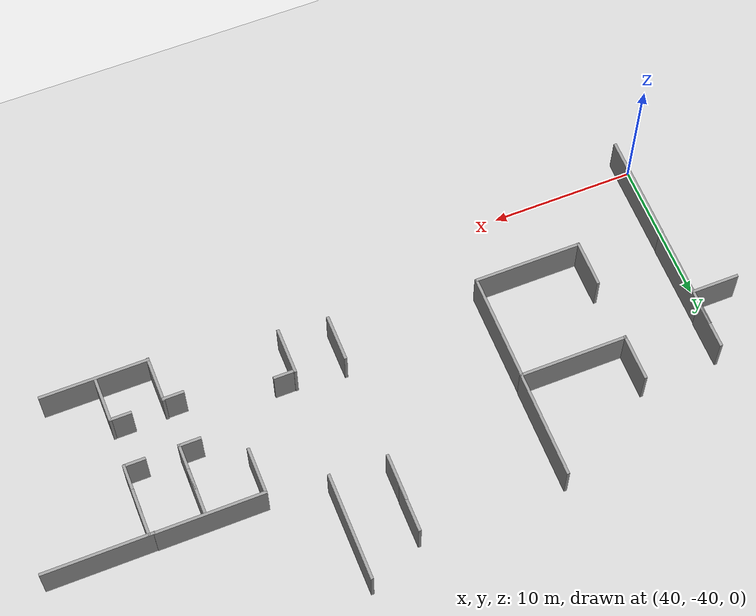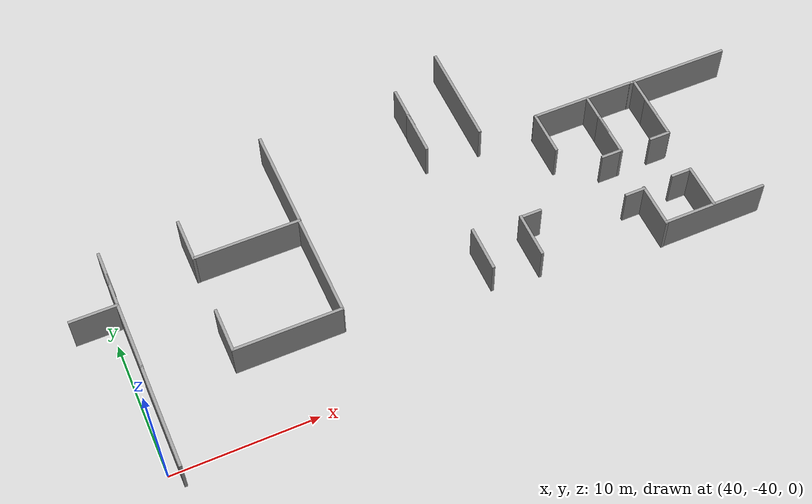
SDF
<sdf version="1.7">
 <world name="default">
  <model name="ground_plane">
   <static>1</static>
   <link name="link">
    <collision name="collision">
     <geometry><plane><normal>0 0 1</normal><size>100 100</size></plane></geometry>
     <surface>
      <contact><collide_bitmask>65535</collide_bitmask></contact>
      <friction><ode><mu>100</mu><mu2>50</mu2></ode></friction>
     </surface>
    </collision>
    <visual name="visual">
     <cast_shadows>0</cast_shadows>
     <geometry><plane><normal>0 0 1</normal><size>100 100</size></plane></geometry>
     <material>
      <script><uri>file://media/materials/scripts/gazebo.material</uri><name>Gazebo/Grey</name></script>
     </material>
    </visual>
   </link>
  </model>
  <model name="grey_wall_clone_2_clone_clone_clone_1_clone_clone_clone_clone_2_clone_4">
   <static>1</static>
   <link name="link">
    <pose>0 0 1.4 0 -0 0</pose>
    <collision name="collision"><geometry><box><size>7.5 0.2 2.8</size></box></geometry></collision>
    <visual name="visual">
     <cast_shadows>0</cast_shadows>
     <geometry><box><size>7.5 0.2 2.8</size></box></geometry>
     <material>
      <script>
       <uri>model://grey_wall/materials/scripts</uri>
       <uri>model://grey_wall/materials/textures</uri>
       <name>vrc/grey_wall</name>
      </script>
     </material>
    </visual>
   </link>
   <pose>40.8031 -37.3472 0 0 0 -1.5708</pose>
  </model>
  <model name="grey_wall_clone_2_clone_clone_clone_1_clone_clone_clone_clone_2_clone_5">
   <static>1</static>
   <link name="link">
    <pose>0 0 1.4 0 -0 0</pose>
    <collision name="collision"><geometry><box><size>7.5 0.2 2.8</size></box></geometry></collision>
    <visual name="visual">
     <cast_shadows>0</cast_shadows>
     <geometry><box><size>7.5 0.2 2.8</size></box></geometry>
     <material>
      <script>
       <uri>model://grey_wall/materials/scripts</uri>
       <uri>model://grey_wall/materials/textures</uri>
       <name>vrc/grey_wall</name>
      </script>
     </material>
    </visual>
   </link>
   <pose>40.8202 -29.9795 0 0 0 -1.5708</pose>
  </model>
  <model name="fixed_half_clone_14">
   <link name="link">
    <pose>0 0 1.4 0 -0 0</pose>
    <inertial>
     <mass>1</mass>
     <inertia><ixx>1</ixx><ixy>0</ixy><ixz>0</ixz><iyy>1</iyy><iyz>0</iyz><izz>1</izz></inertia>
    </inertial>
    <visual name="visual">
     <cast_shadows>0</cast_shadows>
     <geometry><box><size>3.3 0.2 2.8</size></box></geometry>
     <material>
      <script>
       <uri>model://grey_wall/materials/scripts</uri>
       <uri>model://grey_wall/materials/textures</uri>
       <name>vrc/grey_wall</name>
      </script>
      <shader type="pixel"><normal_map>__default__</normal_map></shader>
      <ambient>1 1 1 1</ambient>
      <diffuse>1 1 1 1</diffuse>
      <specular>0 0 0 1</specular>
      <emissive>0 0 0 1</emissive>
     </material>
    </visual>
    <collision name="collision">
     <geometry><box><size>3.3 0.2 2.8</size></box></geometry>
     <surface>
      <friction>
       <ode><mu>1</mu><mu2>1</mu2><fdir1>0 0 0</fdir1><slip1>0</slip1><slip2>0</slip2></ode>
       <torsional>
        <coefficient>1</coefficient>
        <patch_radius>0</patch_radius>
        <surface_radius>0</surface_radius>
        <use_patch_radius>1</use_patch_radius>
        <ode><slip>0</slip></ode>
       </torsional>
      </friction>
      <bounce><restitution_coefficient>0</restitution_coefficient><threshold>1e+06</threshold></bounce>
      <contact>
       <collide_without_contact>0</collide_without_contact>
       <collide_without_contact_bitmask>1</collide_without_contact_bitmask>
       <collide_bitmask>1</collide_bitmask>
       <ode>
        <soft_cfm>0</soft_cfm>
        <soft_erp>0.2</soft_erp>
        <kp>1e+13</kp>
        <kd>1</kd>
        <max_vel>0.01</max_vel>
        <min_depth>0</min_depth>
       </ode>
       <bullet>
        <split_impulse>1</split_impulse>
        <split_impulse_penetration_threshold>-0.01</split_impulse_penetration_threshold>
        <soft_cfm>0</soft_cfm>
        <soft_erp>0.2</soft_erp>
        <kp>1e+13</kp>
        <kd>1</kd>
       </bullet>
      </contact>
     </surface>
    </collision>
   </link>
   <static>1</static>
   <pose>40.8587 -26.1299 0 0 0 -1.5708</pose>
  </model>
  <model name="fixed_half_clone_17_clone_4">
   <link name="link">
    <pose>0 0 1.4 0 -0 0</pose>
    <inertial>
     <mass>1</mass>
     <inertia><ixx>1</ixx><ixy>0</ixy><ixz>0</ixz><iyy>1</iyy><iyz>0</iyz><izz>1</izz></inertia>
    </inertial>
    <visual name="visual">
     <cast_shadows>0</cast_shadows>
     <geometry><box><size>3.3 0.2 2.8</size></box></geometry>
     <material>
      <script>
       <uri>model://grey_wall/materials/scripts</uri>
       <uri>model://grey_wall/materials/textures</uri>
       <name>vrc/grey_wall</name>
      </script>
      <shader type="pixel"><normal_map>__default__</normal_map></shader>
      <ambient>1 1 1 1</ambient>
      <diffuse>1 1 1 1</diffuse>
      <specular>0 0 0 1</specular>
      <emissive>0 0 0 1</emissive>
     </material>
    </visual>
    <collision name="collision">
     <geometry><box><size>3.3 0.2 2.8</size></box></geometry>
     <surface>
      <friction>
       <ode><mu>1</mu><mu2>1</mu2><fdir1>0 0 0</fdir1><slip1>0</slip1><slip2>0</slip2></ode>
       <torsional>
        <coefficient>1</coefficient>
        <patch_radius>0</patch_radius>
        <surface_radius>0</surface_radius>
        <use_patch_radius>1</use_patch_radius>
        <ode><slip>0</slip></ode>
       </torsional>
      </friction>
      <bounce><restitution_coefficient>0</restitution_coefficient><threshold>1e+06</threshold></bounce>
      <contact>
       <collide_without_contact>0</collide_without_contact>
       <collide_without_contact_bitmask>1</collide_without_contact_bitmask>
       <collide_bitmask>1</collide_bitmask>
       <ode>
        <soft_cfm>0</soft_cfm>
        <soft_erp>0.2</soft_erp>
        <kp>1e+13</kp>
        <kd>1</kd>
        <max_vel>0.01</max_vel>
        <min_depth>0</min_depth>
       </ode>
       <bullet>
        <split_impulse>1</split_impulse>
        <split_impulse_penetration_threshold>-0.01</split_impulse_penetration_threshold>
        <soft_cfm>0</soft_cfm>
        <soft_erp>0.2</soft_erp>
        <kp>1e+13</kp>
        <kd>1</kd>
       </bullet>
      </contact>
     </surface>
    </collision>
   </link>
   <static>1</static>
   <pose>39.2128 -28.7659 0 0 -0 3.14159</pose>
  </model>
  <model name="grey_wall_clone_2_clone_clone_clone_1_clone_clone_0_clone_1_clone_clone_clone">
   <static>1</static>
   <link name="link">
    <pose>0 0 1.4 0 -0 0</pose>
    <collision name="collision"><geometry><box><size>7.5 0.2 2.8</size></box></geometry></collision>
    <visual name="visual">
     <cast_shadows>0</cast_shadows>
     <geometry><box><size>7.5 0.2 2.8</size></box></geometry>
     <material>
      <script>
       <uri>model://grey_wall/materials/scripts</uri>
       <uri>model://grey_wall/materials/textures</uri>
       <name>vrc/grey_wall</name>
      </script>
     </material>
    </visual>
   </link>
   <pose>53.7567 -23.6775 0 0 0 -1.5708</pose>
  </model>
  <model name="grey_wall_clone_1_clone_2_clone_clone_clone_clone_clone_clone_clone_clone_clone">
   <static>1</static>
   <link name="link">
    <pose>0 0 1.4 0 -0 0</pose>
    <collision name="collision"><geometry><box><size>7.5 0.2 2.8</size></box></geometry></collision>
    <visual name="visual">
     <cast_shadows>0</cast_shadows>
     <geometry><box><size>7.5 0.2 2.8</size></box></geometry>
     <material>
      <script>
       <uri>model://grey_wall/materials/scripts</uri>
       <uri>model://grey_wall/materials/textures</uri>
       <name>vrc/grey_wall</name>
      </script>
     </material>
    </visual>
   </link>
   <pose>50.0705 -27.3647 0 0 -0 0</pose>
  </model>
  <model name="fixed_half_clone_16_clone_clone_clone">
   <link name="link">
    <pose>0 0 1.4 0 -0 0</pose>
    <inertial>
     <mass>1</mass>
     <inertia><ixx>1</ixx><ixy>0</ixy><ixz>0</ixz><iyy>1</iyy><iyz>0</iyz><izz>1</izz></inertia>
    </inertial>
    <visual name="visual">
     <cast_shadows>0</cast_shadows>
     <geometry><box><size>3.3 0.2 2.8</size></box></geometry>
     <material>
      <script>
       <uri>model://grey_wall/materials/scripts</uri>
       <uri>model://grey_wall/materials/textures</uri>
       <name>vrc/grey_wall</name>
      </script>
      <shader type="pixel"><normal_map>__default__</normal_map></shader>
      <ambient>1 1 1 1</ambient>
      <diffuse>1 1 1 1</diffuse>
      <specular>0 0 0 1</specular>
      <emissive>0 0 0 1</emissive>
     </material>
    </visual>
    <collision name="collision">
     <geometry><box><size>3.3 0.2 2.8</size></box></geometry>
     <surface>
      <friction>
       <ode><mu>1</mu><mu2>1</mu2><fdir1>0 0 0</fdir1><slip1>0</slip1><slip2>0</slip2></ode>
       <torsional>
        <coefficient>1</coefficient>
        <patch_radius>0</patch_radius>
        <surface_radius>0</surface_radius>
        <use_patch_radius>1</use_patch_radius>
        <ode><slip>0</slip></ode>
       </torsional>
      </friction>
      <bounce><restitution_coefficient>0</restitution_coefficient><threshold>1e+06</threshold></bounce>
      <contact>
       <collide_without_contact>0</collide_without_contact>
       <collide_without_contact_bitmask>1</collide_without_contact_bitmask>
       <collide_bitmask>1</collide_bitmask>
       <ode>
        <soft_cfm>0</soft_cfm>
        <soft_erp>0.2</soft_erp>
        <kp>1e+13</kp>
        <kd>1</kd>
        <max_vel>0.01</max_vel>
        <min_depth>0</min_depth>
       </ode>
       <bullet>
        <split_impulse>1</split_impulse>
        <split_impulse_penetration_threshold>-0.01</split_impulse_penetration_threshold>
        <soft_cfm>0</soft_cfm>
        <soft_erp>0.2</soft_erp>
        <kp>1e+13</kp>
        <kd>1</kd>
       </bullet>
      </contact>
     </surface>
    </collision>
   </link>
   <static>1</static>
   <pose>46.3962 -25.8257 0 0 0 -1.5708</pose>
  </model>
  <model name="grey_wall_clone_2_clone_clone_clone_1_clone_clone_0_clone_1_clone_clone_clone_clone">
   <static>1</static>
   <link name="link">
    <pose>0 0 1.4 0 -0 0</pose>
    <collision name="collision"><geometry><box><size>7.5 0.2 2.8</size></box></geometry></collision>
    <visual name="visual">
     <cast_shadows>0</cast_shadows>
     <geometry><box><size>7.5 0.2 2.8</size></box></geometry>
     <material>
      <script>
       <uri>model://grey_wall/materials/scripts</uri>
       <uri>model://grey_wall/materials/textures</uri>
       <name>vrc/grey_wall</name>
      </script>
     </material>
    </visual>
   </link>
   <pose>53.7317 -31.1721 0 0 0 -1.5708</pose>
  </model>
  <model name="grey_wall_clone_1_clone_2_clone_clone_clone_clone_clone_clone_clone_clone_clone_clone">
   <static>1</static>
   <link name="link">
    <pose>0 0 1.4 0 -0 0</pose>
    <collision name="collision"><geometry><box><size>7.5 0.2 2.8</size></box></geometry></collision>
    <visual name="visual">
     <cast_shadows>0</cast_shadows>
     <geometry><box><size>7.5 0.2 2.8</size></box></geometry>
     <material>
      <script>
       <uri>model://grey_wall/materials/scripts</uri>
       <uri>model://grey_wall/materials/textures</uri>
       <name>vrc/grey_wall</name>
      </script>
     </material>
    </visual>
   </link>
   <pose>50.0144 -34.8338 0 0 -0 0</pose>
  </model>
  <model name="fixed_half_clone_16_clone_clone_clone_clone">
   <link name="link">
    <pose>0 0 1.4 0 -0 0</pose>
    <inertial>
     <mass>1</mass>
     <inertia><ixx>1</ixx><ixy>0</ixy><ixz>0</ixz><iyy>1</iyy><iyz>0</iyz><izz>1</izz></inertia>
    </inertial>
    <visual name="visual">
     <cast_shadows>0</cast_shadows>
     <geometry><box><size>3.3 0.2 2.8</size></box></geometry>
     <material>
      <script>
       <uri>model://grey_wall/materials/scripts</uri>
       <uri>model://grey_wall/materials/textures</uri>
       <name>vrc/grey_wall</name>
      </script>
      <shader type="pixel"><normal_map>__default__</normal_map></shader>
      <ambient>1 1 1 1</ambient>
      <diffuse>1 1 1 1</diffuse>
      <specular>0 0 0 1</specular>
      <emissive>0 0 0 1</emissive>
     </material>
    </visual>
    <collision name="collision">
     <geometry><box><size>3.3 0.2 2.8</size></box></geometry>
     <surface>
      <friction>
       <ode><mu>1</mu><mu2>1</mu2><fdir1>0 0 0</fdir1><slip1>0</slip1><slip2>0</slip2></ode>
       <torsional>
        <coefficient>1</coefficient>
        <patch_radius>0</patch_radius>
        <surface_radius>0</surface_radius>
        <use_patch_radius>1</use_patch_radius>
        <ode><slip>0</slip></ode>
       </torsional>
      </friction>
      <bounce><restitution_coefficient>0</restitution_coefficient><threshold>1e+06</threshold></bounce>
      <contact>
       <collide_without_contact>0</collide_without_contact>
       <collide_without_contact_bitmask>1</collide_without_contact_bitmask>
       <collide_bitmask>1</collide_bitmask>
       <ode>
        <soft_cfm>0</soft_cfm>
        <soft_erp>0.2</soft_erp>
        <kp>1e+13</kp>
        <kd>1</kd>
        <max_vel>0.01</max_vel>
        <min_depth>0</min_depth>
       </ode>
       <bullet>
        <split_impulse>1</split_impulse>
        <split_impulse_penetration_threshold>-0.01</split_impulse_penetration_threshold>
        <soft_cfm>0</soft_cfm>
        <soft_erp>0.2</soft_erp>
        <kp>1e+13</kp>
        <kd>1</kd>
       </bullet>
      </contact>
     </surface>
    </collision>
   </link>
   <static>1</static>
   <pose>46.3629 -33.2767 0 0 0 -1.5708</pose>
  </model>
  <model name="grey_wall_clone_2_clone_clone_clone_1_clone_clone_0_clone_1_clone_clone_clone_1_clone">
   <static>1</static>
   <link name="link">
    <pose>0 0 1.4 0 -0 0</pose>
    <collision name="collision"><geometry><box><size>7.5 0.2 2.8</size></box></geometry></collision>
    <visual name="visual">
     <cast_shadows>0</cast_shadows>
     <geometry><box><size>7.5 0.2 2.8</size></box></geometry>
     <material>
      <script>
       <uri>model://grey_wall/materials/scripts</uri>
       <uri>model://grey_wall/materials/textures</uri>
       <name>vrc/grey_wall</name>
      </script>
     </material>
    </visual>
   </link>
   <pose>67.7602 -21.7644 0 0 0 -1.5708</pose>
  </model>
  <model name="fixed_half_clone_16_clone_clone_clone_0">
   <link name="link">
    <pose>0 0 1.4 0 -0 0</pose>
    <inertial>
     <mass>1</mass>
     <inertia><ixx>1</ixx><ixy>0</ixy><ixz>0</ixz><iyy>1</iyy><iyz>0</iyz><izz>1</izz></inertia>
    </inertial>
    <visual name="visual">
     <cast_shadows>0</cast_shadows>
     <geometry><box><size>3.3 0.2 2.8</size></box></geometry>
     <material>
      <script>
       <uri>model://grey_wall/materials/scripts</uri>
       <uri>model://grey_wall/materials/textures</uri>
       <name>vrc/grey_wall</name>
      </script>
      <shader type="pixel"><normal_map>__default__</normal_map></shader>
      <ambient>1 1 1 1</ambient>
      <diffuse>1 1 1 1</diffuse>
      <specular>0 0 0 1</specular>
      <emissive>0 0 0 1</emissive>
     </material>
    </visual>
    <collision name="collision">
     <geometry><box><size>3.3 0.2 2.8</size></box></geometry>
     <surface>
      <friction>
       <ode><mu>1</mu><mu2>1</mu2><fdir1>0 0 0</fdir1><slip1>0</slip1><slip2>0</slip2></ode>
       <torsional>
        <coefficient>1</coefficient>
        <patch_radius>0</patch_radius>
        <surface_radius>0</surface_radius>
        <use_patch_radius>1</use_patch_radius>
        <ode><slip>0</slip></ode>
       </torsional>
      </friction>
      <bounce><restitution_coefficient>0</restitution_coefficient><threshold>1e+06</threshold></bounce>
      <contact>
       <collide_without_contact>0</collide_without_contact>
       <collide_without_contact_bitmask>1</collide_without_contact_bitmask>
       <collide_bitmask>1</collide_bitmask>
       <ode>
        <soft_cfm>0</soft_cfm>
        <soft_erp>0.2</soft_erp>
        <kp>1e+13</kp>
        <kd>1</kd>
        <max_vel>0.01</max_vel>
        <min_depth>0</min_depth>
       </ode>
       <bullet>
        <split_impulse>1</split_impulse>
        <split_impulse_penetration_threshold>-0.01</split_impulse_penetration_threshold>
        <soft_cfm>0</soft_cfm>
        <soft_erp>0.2</soft_erp>
        <kp>1e+13</kp>
        <kd>1</kd>
       </bullet>
      </contact>
     </surface>
    </collision>
   </link>
   <static>1</static>
   <pose>63.8569 -21.503 0 0 0 -1.5708</pose>
  </model>
  <model name="fixed_half_clone_16_clone_clone_clone_1">
   <link name="link">
    <pose>0 0 1.4 0 -0 0</pose>
    <inertial>
     <mass>1</mass>
     <inertia><ixx>1</ixx><ixy>0</ixy><ixz>0</ixz><iyy>1</iyy><iyz>0</iyz><izz>1</izz></inertia>
    </inertial>
    <visual name="visual">
     <cast_shadows>0</cast_shadows>
     <geometry><box><size>3.3 0.2 2.8</size></box></geometry>
     <material>
      <script>
       <uri>model://grey_wall/materials/scripts</uri>
       <uri>model://grey_wall/materials/textures</uri>
       <name>vrc/grey_wall</name>
      </script>
      <shader type="pixel"><normal_map>__default__</normal_map></shader>
      <ambient>1 1 1 1</ambient>
      <diffuse>1 1 1 1</diffuse>
      <specular>0 0 0 1</specular>
      <emissive>0 0 0 1</emissive>
     </material>
    </visual>
    <collision name="collision">
     <geometry><box><size>3.3 0.2 2.8</size></box></geometry>
     <surface>
      <friction>
       <ode><mu>1</mu><mu2>1</mu2><fdir1>0 0 0</fdir1><slip1>0</slip1><slip2>0</slip2></ode>
       <torsional>
        <coefficient>1</coefficient>
        <patch_radius>0</patch_radius>
        <surface_radius>0</surface_radius>
        <use_patch_radius>1</use_patch_radius>
        <ode><slip>0</slip></ode>
       </torsional>
      </friction>
      <bounce><restitution_coefficient>0</restitution_coefficient><threshold>1e+06</threshold></bounce>
      <contact>
       <collide_without_contact>0</collide_without_contact>
       <collide_without_contact_bitmask>1</collide_without_contact_bitmask>
       <collide_bitmask>1</collide_bitmask>
       <ode>
        <soft_cfm>0</soft_cfm>
        <soft_erp>0.2</soft_erp>
        <kp>1e+13</kp>
        <kd>1</kd>
        <max_vel>0.01</max_vel>
        <min_depth>0</min_depth>
       </ode>
       <bullet>
        <split_impulse>1</split_impulse>
        <split_impulse_penetration_threshold>-0.01</split_impulse_penetration_threshold>
        <soft_cfm>0</soft_cfm>
        <soft_erp>0.2</soft_erp>
        <kp>1e+13</kp>
        <kd>1</kd>
       </bullet>
      </contact>
     </surface>
    </collision>
   </link>
   <static>1</static>
   <pose>63.8366 -23.7503 0 0 0 -1.5708</pose>
  </model>
  <model name="fixed_half_clone_16_clone_clone_clone_0_clone_0">
   <link name="link">
    <pose>0 0 1.4 0 -0 0</pose>
    <inertial>
     <mass>1</mass>
     <inertia><ixx>1</ixx><ixy>0</ixy><ixz>0</ixz><iyy>1</iyy><iyz>0</iyz><izz>1</izz></inertia>
    </inertial>
    <visual name="visual">
     <cast_shadows>0</cast_shadows>
     <geometry><box><size>3.3 0.2 2.8</size></box></geometry>
     <material>
      <script>
       <uri>model://grey_wall/materials/scripts</uri>
       <uri>model://grey_wall/materials/textures</uri>
       <name>vrc/grey_wall</name>
      </script>
      <shader type="pixel"><normal_map>__default__</normal_map></shader>
      <ambient>1 1 1 1</ambient>
      <diffuse>1 1 1 1</diffuse>
      <specular>0 0 0 1</specular>
      <emissive>0 0 0 1</emissive>
     </material>
    </visual>
    <collision name="collision">
     <geometry><box><size>3.3 0.2 2.8</size></box></geometry>
     <surface>
      <friction>
       <ode><mu>1</mu><mu2>1</mu2><fdir1>0 0 0</fdir1><slip1>0</slip1><slip2>0</slip2></ode>
       <torsional>
        <coefficient>1</coefficient>
        <patch_radius>0</patch_radius>
        <surface_radius>0</surface_radius>
        <use_patch_radius>1</use_patch_radius>
        <ode><slip>0</slip></ode>
       </torsional>
      </friction>
      <bounce><restitution_coefficient>0</restitution_coefficient><threshold>1e+06</threshold></bounce>
      <contact>
       <collide_without_contact>0</collide_without_contact>
       <collide_without_contact_bitmask>1</collide_without_contact_bitmask>
       <collide_bitmask>1</collide_bitmask>
       <ode>
        <soft_cfm>0</soft_cfm>
        <soft_erp>0.2</soft_erp>
        <kp>1e+13</kp>
        <kd>1</kd>
        <max_vel>0.01</max_vel>
        <min_depth>0</min_depth>
       </ode>
       <bullet>
        <split_impulse>1</split_impulse>
        <split_impulse_penetration_threshold>-0.01</split_impulse_penetration_threshold>
        <soft_cfm>0</soft_cfm>
        <soft_erp>0.2</soft_erp>
        <kp>1e+13</kp>
        <kd>1</kd>
       </bullet>
      </contact>
     </surface>
    </collision>
   </link>
   <static>1</static>
   <pose>67.1893 -34.6146 0 0 0 -1.5708</pose>
  </model>
  <model name="fixed_half_clone_16_clone_clone_clone_0_clone_2">
   <link name="link">
    <pose>0 0 1.4 0 -0 0</pose>
    <inertial>
     <mass>1</mass>
     <inertia><ixx>1</ixx><ixy>0</ixy><ixz>0</ixz><iyy>1</iyy><iyz>0</iyz><izz>1</izz></inertia>
    </inertial>
    <visual name="visual">
     <cast_shadows>0</cast_shadows>
     <geometry><box><size>3.3 0.2 2.8</size></box></geometry>
     <material>
      <script>
       <uri>model://grey_wall/materials/scripts</uri>
       <uri>model://grey_wall/materials/textures</uri>
       <name>vrc/grey_wall</name>
      </script>
      <shader type="pixel"><normal_map>__default__</normal_map></shader>
      <ambient>1 1 1 1</ambient>
      <diffuse>1 1 1 1</diffuse>
      <specular>0 0 0 1</specular>
      <emissive>0 0 0 1</emissive>
     </material>
    </visual>
    <collision name="collision">
     <geometry><box><size>3.3 0.2 2.8</size></box></geometry>
     <surface>
      <friction>
       <ode><mu>1</mu><mu2>1</mu2><fdir1>0 0 0</fdir1><slip1>0</slip1><slip2>0</slip2></ode>
       <torsional>
        <coefficient>1</coefficient>
        <patch_radius>0</patch_radius>
        <surface_radius>0</surface_radius>
        <use_patch_radius>1</use_patch_radius>
        <ode><slip>0</slip></ode>
       </torsional>
      </friction>
      <bounce><restitution_coefficient>0</restitution_coefficient><threshold>1e+06</threshold></bounce>
      <contact>
       <collide_without_contact>0</collide_without_contact>
       <collide_without_contact_bitmask>1</collide_without_contact_bitmask>
       <collide_bitmask>1</collide_bitmask>
       <ode>
        <soft_cfm>0</soft_cfm>
        <soft_erp>0.2</soft_erp>
        <kp>1e+13</kp>
        <kd>1</kd>
        <max_vel>0.01</max_vel>
        <min_depth>0</min_depth>
       </ode>
       <bullet>
        <split_impulse>1</split_impulse>
        <split_impulse_penetration_threshold>-0.01</split_impulse_penetration_threshold>
        <soft_cfm>0</soft_cfm>
        <soft_erp>0.2</soft_erp>
        <kp>1e+13</kp>
        <kd>1</kd>
       </bullet>
      </contact>
     </surface>
    </collision>
   </link>
   <static>1</static>
   <pose>63.832 -34.2979 0 0 0 -1.5708</pose>
  </model>
  <model name="grey_wall_clone_1_clone_2_clone_clone_clone_clone_clone_clone_clone_clone_clone_3_clone_0_clone_1_clone">
   <static>1</static>
   <link name="link">
    <pose>0 0 1.4 0 -0 0</pose>
    <collision name="collision"><geometry><box><size>7.5 0.2 2.8</size></box></geometry></collision>
    <visual name="visual">
     <cast_shadows>0</cast_shadows>
     <geometry><box><size>7.5 0.2 2.8</size></box></geometry>
     <material>
      <script>
       <uri>model://grey_wall/materials/scripts</uri>
       <uri>model://grey_wall/materials/textures</uri>
       <name>vrc/grey_wall</name>
      </script>
     </material>
    </visual>
   </link>
   <pose>75.4948 -25.8359 0 0 -0 0</pose>
  </model>
  <model name="grey_wall_clone_1_clone_2_clone_clone_clone_clone_clone_clone_clone_clone_clone_3_clone_0_clone_1_clone_0">
   <static>1</static>
   <link name="link">
    <pose>0 0 1.4 0 -0 0</pose>
    <collision name="collision"><geometry><box><size>7.5 0.2 2.8</size></box></geometry></collision>
    <visual name="visual">
     <cast_shadows>0</cast_shadows>
     <geometry><box><size>7.5 0.2 2.8</size></box></geometry>
     <material>
      <script>
       <uri>model://grey_wall/materials/scripts</uri>
       <uri>model://grey_wall/materials/textures</uri>
       <name>vrc/grey_wall</name>
      </script>
     </material>
    </visual>
   </link>
   <pose>82.8983 -25.8597 0 0 -0 0</pose>
  </model>
  <model name="fixed_half_clone_16_clone_clone_clone_1_clone">
   <link name="link">
    <pose>0 0 1.4 0 -0 0</pose>
    <inertial>
     <mass>1</mass>
     <inertia><ixx>1</ixx><ixy>0</ixy><ixz>0</ixz><iyy>1</iyy><iyz>0</iyz><izz>1</izz></inertia>
    </inertial>
    <visual name="visual">
     <cast_shadows>0</cast_shadows>
     <geometry><box><size>3.3 0.2 2.8</size></box></geometry>
     <material>
      <script>
       <uri>model://grey_wall/materials/scripts</uri>
       <uri>model://grey_wall/materials/textures</uri>
       <name>vrc/grey_wall</name>
      </script>
      <shader type="pixel"><normal_map>__default__</normal_map></shader>
      <ambient>1 1 1 1</ambient>
      <diffuse>1 1 1 1</diffuse>
      <specular>0 0 0 1</specular>
      <emissive>0 0 0 1</emissive>
     </material>
    </visual>
    <collision name="collision">
     <geometry><box><size>3.3 0.2 2.8</size></box></geometry>
     <surface>
      <friction>
       <ode><mu>1</mu><mu2>1</mu2><fdir1>0 0 0</fdir1><slip1>0</slip1><slip2>0</slip2></ode>
       <torsional>
        <coefficient>1</coefficient>
        <patch_radius>0</patch_radius>
        <surface_radius>0</surface_radius>
        <use_patch_radius>1</use_patch_radius>
        <ode><slip>0</slip></ode>
       </torsional>
      </friction>
      <bounce><restitution_coefficient>0</restitution_coefficient><threshold>1e+06</threshold></bounce>
      <contact>
       <collide_without_contact>0</collide_without_contact>
       <collide_without_contact_bitmask>1</collide_without_contact_bitmask>
       <collide_bitmask>1</collide_bitmask>
       <ode>
        <soft_cfm>0</soft_cfm>
        <soft_erp>0.2</soft_erp>
        <kp>1e+13</kp>
        <kd>1</kd>
        <max_vel>0.01</max_vel>
        <min_depth>0</min_depth>
       </ode>
       <bullet>
        <split_impulse>1</split_impulse>
        <split_impulse_penetration_threshold>-0.01</split_impulse_penetration_threshold>
        <soft_cfm>0</soft_cfm>
        <soft_erp>0.2</soft_erp>
        <kp>1e+13</kp>
        <kd>1</kd>
       </bullet>
      </contact>
     </surface>
    </collision>
   </link>
   <static>1</static>
   <pose>71.84 -27.4337 0 0 0 -1.5708</pose>
  </model>
  <model name="fixed_half_clone_16_clone_clone_clone_1_clone_0">
   <link name="link">
    <pose>0 0 1.4 0 -0 0</pose>
    <inertial>
     <mass>1</mass>
     <inertia><ixx>1</ixx><ixy>0</ixy><ixz>0</ixz><iyy>1</iyy><iyz>0</iyz><izz>1</izz></inertia>
    </inertial>
    <visual name="visual">
     <cast_shadows>0</cast_shadows>
     <geometry><box><size>3.3 0.2 2.8</size></box></geometry>
     <material>
      <script>
       <uri>model://grey_wall/materials/scripts</uri>
       <uri>model://grey_wall/materials/textures</uri>
       <name>vrc/grey_wall</name>
      </script>
      <shader type="pixel"><normal_map>__default__</normal_map></shader>
      <ambient>1 1 1 1</ambient>
      <diffuse>1 1 1 1</diffuse>
      <specular>0 0 0 1</specular>
      <emissive>0 0 0 1</emissive>
     </material>
    </visual>
    <collision name="collision">
     <geometry><box><size>3.3 0.2 2.8</size></box></geometry>
     <surface>
      <friction>
       <ode><mu>1</mu><mu2>1</mu2><fdir1>0 0 0</fdir1><slip1>0</slip1><slip2>0</slip2></ode>
       <torsional>
        <coefficient>1</coefficient>
        <patch_radius>0</patch_radius>
        <surface_radius>0</surface_radius>
        <use_patch_radius>1</use_patch_radius>
        <ode><slip>0</slip></ode>
       </torsional>
      </friction>
      <bounce><restitution_coefficient>0</restitution_coefficient><threshold>1e+06</threshold></bounce>
      <contact>
       <collide_without_contact>0</collide_without_contact>
       <collide_without_contact_bitmask>1</collide_without_contact_bitmask>
       <collide_bitmask>1</collide_bitmask>
       <ode>
        <soft_cfm>0</soft_cfm>
        <soft_erp>0.2</soft_erp>
        <kp>1e+13</kp>
        <kd>1</kd>
        <max_vel>0.01</max_vel>
        <min_depth>0</min_depth>
       </ode>
       <bullet>
        <split_impulse>1</split_impulse>
        <split_impulse_penetration_threshold>-0.01</split_impulse_penetration_threshold>
        <soft_cfm>0</soft_cfm>
        <soft_erp>0.2</soft_erp>
        <kp>1e+13</kp>
        <kd>1</kd>
       </bullet>
      </contact>
     </surface>
    </collision>
   </link>
   <static>1</static>
   <pose>75.8338 -27.4844 0 0 0 -1.5708</pose>
  </model>
  <model name="fixed_half_clone_16_clone_clone_clone_1_clone_1">
   <link name="link">
    <pose>0 0 1.4 0 -0 0</pose>
    <inertial>
     <mass>1</mass>
     <inertia><ixx>1</ixx><ixy>0</ixy><ixz>0</ixz><iyy>1</iyy><iyz>0</iyz><izz>1</izz></inertia>
    </inertial>
    <visual name="visual">
     <cast_shadows>0</cast_shadows>
     <geometry><box><size>3.3 0.2 2.8</size></box></geometry>
     <material>
      <script>
       <uri>model://grey_wall/materials/scripts</uri>
       <uri>model://grey_wall/materials/textures</uri>
       <name>vrc/grey_wall</name>
      </script>
      <shader type="pixel"><normal_map>__default__</normal_map></shader>
      <ambient>1 1 1 1</ambient>
      <diffuse>1 1 1 1</diffuse>
      <specular>0 0 0 1</specular>
      <emissive>0 0 0 1</emissive>
     </material>
    </visual>
    <collision name="collision">
     <geometry><box><size>3.3 0.2 2.8</size></box></geometry>
     <surface>
      <friction>
       <ode><mu>1</mu><mu2>1</mu2><fdir1>0 0 0</fdir1><slip1>0</slip1><slip2>0</slip2></ode>
       <torsional>
        <coefficient>1</coefficient>
        <patch_radius>0</patch_radius>
        <surface_radius>0</surface_radius>
        <use_patch_radius>1</use_patch_radius>
        <ode><slip>0</slip></ode>
       </torsional>
      </friction>
      <bounce><restitution_coefficient>0</restitution_coefficient><threshold>1e+06</threshold></bounce>
      <contact>
       <collide_without_contact>0</collide_without_contact>
       <collide_without_contact_bitmask>1</collide_without_contact_bitmask>
       <collide_bitmask>1</collide_bitmask>
       <ode>
        <soft_cfm>0</soft_cfm>
        <soft_erp>0.2</soft_erp>
        <kp>1e+13</kp>
        <kd>1</kd>
        <max_vel>0.01</max_vel>
        <min_depth>0</min_depth>
       </ode>
       <bullet>
        <split_impulse>1</split_impulse>
        <split_impulse_penetration_threshold>-0.01</split_impulse_penetration_threshold>
        <soft_cfm>0</soft_cfm>
        <soft_erp>0.2</soft_erp>
        <kp>1e+13</kp>
        <kd>1</kd>
       </bullet>
      </contact>
     </surface>
    </collision>
   </link>
   <static>1</static>
   <pose>75.8278 -29.308 0 0 0 -1.5708</pose>
  </model>
  <model name="fixed_half_clone_16_clone_clone_clone_1_clone_2">
   <link name="link">
    <pose>0 0 1.4 0 -0 0</pose>
    <inertial>
     <mass>1</mass>
     <inertia><ixx>1</ixx><ixy>0</ixy><ixz>0</ixz><iyy>1</iyy><iyz>0</iyz><izz>1</izz></inertia>
    </inertial>
    <visual name="visual">
     <cast_shadows>0</cast_shadows>
     <geometry><box><size>3.3 0.2 2.8</size></box></geometry>
     <material>
      <script>
       <uri>model://grey_wall/materials/scripts</uri>
       <uri>model://grey_wall/materials/textures</uri>
       <name>vrc/grey_wall</name>
      </script>
      <shader type="pixel"><normal_map>__default__</normal_map></shader>
      <ambient>1 1 1 1</ambient>
      <diffuse>1 1 1 1</diffuse>
      <specular>0 0 0 1</specular>
      <emissive>0 0 0 1</emissive>
     </material>
    </visual>
    <collision name="collision">
     <geometry><box><size>3.3 0.2 2.8</size></box></geometry>
     <surface>
      <friction>
       <ode><mu>1</mu><mu2>1</mu2><fdir1>0 0 0</fdir1><slip1>0</slip1><slip2>0</slip2></ode>
       <torsional>
        <coefficient>1</coefficient>
        <patch_radius>0</patch_radius>
        <surface_radius>0</surface_radius>
        <use_patch_radius>1</use_patch_radius>
        <ode><slip>0</slip></ode>
       </torsional>
      </friction>
      <bounce><restitution_coefficient>0</restitution_coefficient><threshold>1e+06</threshold></bounce>
      <contact>
       <collide_without_contact>0</collide_without_contact>
       <collide_without_contact_bitmask>1</collide_without_contact_bitmask>
       <collide_bitmask>1</collide_bitmask>
       <ode>
        <soft_cfm>0</soft_cfm>
        <soft_erp>0.2</soft_erp>
        <kp>1e+13</kp>
        <kd>1</kd>
        <max_vel>0.01</max_vel>
        <min_depth>0</min_depth>
       </ode>
       <bullet>
        <split_impulse>1</split_impulse>
        <split_impulse_penetration_threshold>-0.01</split_impulse_penetration_threshold>
        <soft_cfm>0</soft_cfm>
        <soft_erp>0.2</soft_erp>
        <kp>1e+13</kp>
        <kd>1</kd>
       </bullet>
      </contact>
     </surface>
    </collision>
   </link>
   <static>1</static>
   <pose>79.5324 -27.4684 0 0 0 -1.5708</pose>
  </model>
  <model name="fixed_half_clone_16_clone_clone_clone_1_clone_3">
   <link name="link">
    <pose>0 0 1.4 0 -0 0</pose>
    <inertial>
     <mass>1</mass>
     <inertia><ixx>1</ixx><ixy>0</ixy><ixz>0</ixz><iyy>1</iyy><iyz>0</iyz><izz>1</izz></inertia>
    </inertial>
    <visual name="visual">
     <cast_shadows>0</cast_shadows>
     <geometry><box><size>3.3 0.2 2.8</size></box></geometry>
     <material>
      <script>
       <uri>model://grey_wall/materials/scripts</uri>
       <uri>model://grey_wall/materials/textures</uri>
       <name>vrc/grey_wall</name>
      </script>
      <shader type="pixel"><normal_map>__default__</normal_map></shader>
      <ambient>1 1 1 1</ambient>
      <diffuse>1 1 1 1</diffuse>
      <specular>0 0 0 1</specular>
      <emissive>0 0 0 1</emissive>
     </material>
    </visual>
    <collision name="collision">
     <geometry><box><size>3.3 0.2 2.8</size></box></geometry>
     <surface>
      <friction>
       <ode><mu>1</mu><mu2>1</mu2><fdir1>0 0 0</fdir1><slip1>0</slip1><slip2>0</slip2></ode>
       <torsional>
        <coefficient>1</coefficient>
        <patch_radius>0</patch_radius>
        <surface_radius>0</surface_radius>
        <use_patch_radius>1</use_patch_radius>
        <ode><slip>0</slip></ode>
       </torsional>
      </friction>
      <bounce><restitution_coefficient>0</restitution_coefficient><threshold>1e+06</threshold></bounce>
      <contact>
       <collide_without_contact>0</collide_without_contact>
       <collide_without_contact_bitmask>1</collide_without_contact_bitmask>
       <collide_bitmask>1</collide_bitmask>
       <ode>
        <soft_cfm>0</soft_cfm>
        <soft_erp>0.2</soft_erp>
        <kp>1e+13</kp>
        <kd>1</kd>
        <max_vel>0.01</max_vel>
        <min_depth>0</min_depth>
       </ode>
       <bullet>
        <split_impulse>1</split_impulse>
        <split_impulse_penetration_threshold>-0.01</split_impulse_penetration_threshold>
        <soft_cfm>0</soft_cfm>
        <soft_erp>0.2</soft_erp>
        <kp>1e+13</kp>
        <kd>1</kd>
       </bullet>
      </contact>
     </surface>
    </collision>
   </link>
   <static>1</static>
   <pose>79.5207 -29.2581 0 0 0 -1.5708</pose>
  </model>
  <model name="half_wall_clone_0_clone_clone_clone_9_clone_1_clone">
   <link name="link">
    <pose>0 0 1.4 0 -0 0</pose>
    <inertial>
     <mass>1</mass>
     <inertia><ixx>1</ixx><ixy>0</ixy><ixz>0</ixz><iyy>1</iyy><iyz>0</iyz><izz>1</izz></inertia>
    </inertial>
    <visual name="visual">
     <cast_shadows>0</cast_shadows>
     <geometry><box><size>1.5 0.2 2.8</size></box></geometry>
     <material>
      <script>
       <uri>model://grey_wall/materials/scripts</uri>
       <uri>model://grey_wall/materials/textures</uri>
       <name>vrc/grey_wall</name>
      </script>
      <shader type="pixel"><normal_map>__default__</normal_map></shader>
      <ambient>1 1 1 1</ambient>
      <diffuse>1 1 1 1</diffuse>
      <specular>0 0 0 1</specular>
      <emissive>0 0 0 1</emissive>
     </material>
    </visual>
    <collision name="collision">
     <geometry><box><size>1.5 0.2 2.8</size></box></geometry>
     <surface>
      <friction>
       <ode><mu>1</mu><mu2>1</mu2><fdir1>0 0 0</fdir1><slip1>0</slip1><slip2>0</slip2></ode>
       <torsional>
        <coefficient>1</coefficient>
        <patch_radius>0</patch_radius>
        <surface_radius>0</surface_radius>
        <use_patch_radius>1</use_patch_radius>
        <ode><slip>0</slip></ode>
       </torsional>
      </friction>
      <bounce><restitution_coefficient>0</restitution_coefficient><threshold>1e+06</threshold></bounce>
      <contact>
       <collide_without_contact>0</collide_without_contact>
       <collide_without_contact_bitmask>1</collide_without_contact_bitmask>
       <collide_bitmask>1</collide_bitmask>
       <ode>
        <soft_cfm>0</soft_cfm>
        <soft_erp>0.2</soft_erp>
        <kp>1e+13</kp>
        <kd>1</kd>
        <max_vel>0.01</max_vel>
        <min_depth>0</min_depth>
       </ode>
       <bullet>
        <split_impulse>1</split_impulse>
        <split_impulse_penetration_threshold>-0.01</split_impulse_penetration_threshold>
        <soft_cfm>0</soft_cfm>
        <soft_erp>0.2</soft_erp>
        <kp>1e+13</kp>
        <kd>1</kd>
       </bullet>
      </contact>
     </surface>
    </collision>
   </link>
   <static>1</static>
   <pose>75.1045 -30.8574 0 0 -0 3.14159</pose>
  </model>
  <model name="half_wall_clone_0_clone_clone_clone_9_clone_1_clone_0">
   <link name="link">
    <pose>0 0 1.4 0 -0 0</pose>
    <inertial>
     <mass>1</mass>
     <inertia><ixx>1</ixx><ixy>0</ixy><ixz>0</ixz><iyy>1</iyy><iyz>0</iyz><izz>1</izz></inertia>
    </inertial>
    <visual name="visual">
     <cast_shadows>0</cast_shadows>
     <geometry><box><size>1.5 0.2 2.8</size></box></geometry>
     <material>
      <script>
       <uri>model://grey_wall/materials/scripts</uri>
       <uri>model://grey_wall/materials/textures</uri>
       <name>vrc/grey_wall</name>
      </script>
      <shader type="pixel"><normal_map>__default__</normal_map></shader>
      <ambient>1 1 1 1</ambient>
      <diffuse>1 1 1 1</diffuse>
      <specular>0 0 0 1</specular>
      <emissive>0 0 0 1</emissive>
     </material>
    </visual>
    <collision name="collision">
     <geometry><box><size>1.5 0.2 2.8</size></box></geometry>
     <surface>
      <friction>
       <ode><mu>1</mu><mu2>1</mu2><fdir1>0 0 0</fdir1><slip1>0</slip1><slip2>0</slip2></ode>
       <torsional>
        <coefficient>1</coefficient>
        <patch_radius>0</patch_radius>
        <surface_radius>0</surface_radius>
        <use_patch_radius>1</use_patch_radius>
        <ode><slip>0</slip></ode>
       </torsional>
      </friction>
      <bounce><restitution_coefficient>0</restitution_coefficient><threshold>1e+06</threshold></bounce>
      <contact>
       <collide_without_contact>0</collide_without_contact>
       <collide_without_contact_bitmask>1</collide_without_contact_bitmask>
       <collide_bitmask>1</collide_bitmask>
       <ode>
        <soft_cfm>0</soft_cfm>
        <soft_erp>0.2</soft_erp>
        <kp>1e+13</kp>
        <kd>1</kd>
        <max_vel>0.01</max_vel>
        <min_depth>0</min_depth>
       </ode>
       <bullet>
        <split_impulse>1</split_impulse>
        <split_impulse_penetration_threshold>-0.01</split_impulse_penetration_threshold>
        <soft_cfm>0</soft_cfm>
        <soft_erp>0.2</soft_erp>
        <kp>1e+13</kp>
        <kd>1</kd>
       </bullet>
      </contact>
     </surface>
    </collision>
   </link>
   <static>1</static>
   <pose>78.8228 -30.8291 0 0 -0 3.14159</pose>
  </model>
  <model name="fixed_half_clone_16_clone_clone_clone_1_clone_clone">
   <link name="link">
    <pose>0 0 1.4 0 -0 0</pose>
    <inertial>
     <mass>1</mass>
     <inertia><ixx>1</ixx><ixy>0</ixy><ixz>0</ixz><iyy>1</iyy><iyz>0</iyz><izz>1</izz></inertia>
    </inertial>
    <visual name="visual">
     <cast_shadows>0</cast_shadows>
     <geometry><box><size>3.3 0.2 2.8</size></box></geometry>
     <material>
      <script>
       <uri>model://grey_wall/materials/scripts</uri>
       <uri>model://grey_wall/materials/textures</uri>
       <name>vrc/grey_wall</name>
      </script>
      <shader type="pixel"><normal_map>__default__</normal_map></shader>
      <ambient>1 1 1 1</ambient>
      <diffuse>1 1 1 1</diffuse>
      <specular>0 0 0 1</specular>
      <emissive>0 0 0 1</emissive>
     </material>
    </visual>
    <collision name="collision">
     <geometry><box><size>3.3 0.2 2.8</size></box></geometry>
     <surface>
      <friction>
       <ode><mu>1</mu><mu2>1</mu2><fdir1>0 0 0</fdir1><slip1>0</slip1><slip2>0</slip2></ode>
       <torsional>
        <coefficient>1</coefficient>
        <patch_radius>0</patch_radius>
        <surface_radius>0</surface_radius>
        <use_patch_radius>1</use_patch_radius>
        <ode><slip>0</slip></ode>
       </torsional>
      </friction>
      <bounce><restitution_coefficient>0</restitution_coefficient><threshold>1e+06</threshold></bounce>
      <contact>
       <collide_without_contact>0</collide_without_contact>
       <collide_without_contact_bitmask>1</collide_without_contact_bitmask>
       <collide_bitmask>1</collide_bitmask>
       <ode>
        <soft_cfm>0</soft_cfm>
        <soft_erp>0.2</soft_erp>
        <kp>1e+13</kp>
        <kd>1</kd>
        <max_vel>0.01</max_vel>
        <min_depth>0</min_depth>
       </ode>
       <bullet>
        <split_impulse>1</split_impulse>
        <split_impulse_penetration_threshold>-0.01</split_impulse_penetration_threshold>
        <soft_cfm>0</soft_cfm>
        <soft_erp>0.2</soft_erp>
        <kp>1e+13</kp>
        <kd>1</kd>
       </bullet>
      </contact>
     </surface>
    </collision>
   </link>
   <static>1</static>
   <pose>79.3375 -35.7245 0 0 0 -1.5708</pose>
  </model>
  <model name="fixed_half_clone_16_clone_clone_clone_1_clone_clone_0">
   <link name="link">
    <pose>0 0 1.4 0 -0 0</pose>
    <inertial>
     <mass>1</mass>
     <inertia><ixx>1</ixx><ixy>0</ixy><ixz>0</ixz><iyy>1</iyy><iyz>0</iyz><izz>1</izz></inertia>
    </inertial>
    <visual name="visual">
     <cast_shadows>0</cast_shadows>
     <geometry><box><size>3.3 0.2 2.8</size></box></geometry>
     <material>
      <script>
       <uri>model://grey_wall/materials/scripts</uri>
       <uri>model://grey_wall/materials/textures</uri>
       <name>vrc/grey_wall</name>
      </script>
      <shader type="pixel"><normal_map>__default__</normal_map></shader>
      <ambient>1 1 1 1</ambient>
      <diffuse>1 1 1 1</diffuse>
      <specular>0 0 0 1</specular>
      <emissive>0 0 0 1</emissive>
     </material>
    </visual>
    <collision name="collision">
     <geometry><box><size>3.3 0.2 2.8</size></box></geometry>
     <surface>
      <friction>
       <ode><mu>1</mu><mu2>1</mu2><fdir1>0 0 0</fdir1><slip1>0</slip1><slip2>0</slip2></ode>
       <torsional>
        <coefficient>1</coefficient>
        <patch_radius>0</patch_radius>
        <surface_radius>0</surface_radius>
        <use_patch_radius>1</use_patch_radius>
        <ode><slip>0</slip></ode>
       </torsional>
      </friction>
      <bounce><restitution_coefficient>0</restitution_coefficient><threshold>1e+06</threshold></bounce>
      <contact>
       <collide_without_contact>0</collide_without_contact>
       <collide_without_contact_bitmask>1</collide_without_contact_bitmask>
       <collide_bitmask>1</collide_bitmask>
       <ode>
        <soft_cfm>0</soft_cfm>
        <soft_erp>0.2</soft_erp>
        <kp>1e+13</kp>
        <kd>1</kd>
        <max_vel>0.01</max_vel>
        <min_depth>0</min_depth>
       </ode>
       <bullet>
        <split_impulse>1</split_impulse>
        <split_impulse_penetration_threshold>-0.01</split_impulse_penetration_threshold>
        <soft_cfm>0</soft_cfm>
        <soft_erp>0.2</soft_erp>
        <kp>1e+13</kp>
        <kd>1</kd>
       </bullet>
      </contact>
     </surface>
    </collision>
   </link>
   <static>1</static>
   <pose>75.7325 -35.8213 0 0 0 -1.5708</pose>
  </model>
  <model name="grey_wall_clone_1_clone_2_clone_clone_clone_clone_clone_clone_clone_clone_clone_3_clone_0_clone_1_clone_clone_0_clone">
   <static>1</static>
   <link name="link">
    <pose>0 0 1.4 0 -0 0</pose>
    <collision name="collision"><geometry><box><size>7.5 0.2 2.8</size></box></geometry></collision>
    <visual name="visual">
     <cast_shadows>0</cast_shadows>
     <geometry><box><size>7.5 0.2 2.8</size></box></geometry>
     <material>
      <script>
       <uri>model://grey_wall/materials/scripts</uri>
       <uri>model://grey_wall/materials/textures</uri>
       <name>vrc/grey_wall</name>
      </script>
     </material>
    </visual>
   </link>
   <pose>79.3859 -37.3428 0 0 -0 0</pose>
  </model>
  <model name="half_wall_clone_0_clone_clone_clone_9_clone_1_clone_clone">
   <link name="link">
    <pose>0 0 1.4 0 -0 0</pose>
    <inertial>
     <mass>1</mass>
     <inertia><ixx>1</ixx><ixy>0</ixy><ixz>0</ixz><iyy>1</iyy><iyz>0</iyz><izz>1</izz></inertia>
    </inertial>
    <visual name="visual">
     <cast_shadows>0</cast_shadows>
     <geometry><box><size>1.5 0.2 2.8</size></box></geometry>
     <material>
      <script>
       <uri>model://grey_wall/materials/scripts</uri>
       <uri>model://grey_wall/materials/textures</uri>
       <name>vrc/grey_wall</name>
      </script>
      <shader type="pixel"><normal_map>__default__</normal_map></shader>
      <ambient>1 1 1 1</ambient>
      <diffuse>1 1 1 1</diffuse>
      <specular>0 0 0 1</specular>
      <emissive>0 0 0 1</emissive>
     </material>
    </visual>
    <collision name="collision">
     <geometry><box><size>1.5 0.2 2.8</size></box></geometry>
     <surface>
      <friction>
       <ode><mu>1</mu><mu2>1</mu2><fdir1>0 0 0</fdir1><slip1>0</slip1><slip2>0</slip2></ode>
       <torsional>
        <coefficient>1</coefficient>
        <patch_radius>0</patch_radius>
        <surface_radius>0</surface_radius>
        <use_patch_radius>1</use_patch_radius>
        <ode><slip>0</slip></ode>
       </torsional>
      </friction>
      <bounce><restitution_coefficient>0</restitution_coefficient><threshold>1e+06</threshold></bounce>
      <contact>
       <collide_without_contact>0</collide_without_contact>
       <collide_without_contact_bitmask>1</collide_without_contact_bitmask>
       <collide_bitmask>1</collide_bitmask>
       <ode>
        <soft_cfm>0</soft_cfm>
        <soft_erp>0.2</soft_erp>
        <kp>1e+13</kp>
        <kd>1</kd>
        <max_vel>0.01</max_vel>
        <min_depth>0</min_depth>
       </ode>
       <bullet>
        <split_impulse>1</split_impulse>
        <split_impulse_penetration_threshold>-0.01</split_impulse_penetration_threshold>
        <soft_cfm>0</soft_cfm>
        <soft_erp>0.2</soft_erp>
        <kp>1e+13</kp>
        <kd>1</kd>
       </bullet>
      </contact>
     </surface>
    </collision>
   </link>
   <static>1</static>
   <pose>78.6398 -34.1875 0 0 -0 3.14159</pose>
  </model>
  <model name="half_wall_clone_0_clone_clone_clone_9_clone_1_clone_clone_0">
   <link name="link">
    <pose>0 0 1.4 0 -0 0</pose>
    <inertial>
     <mass>1</mass>
     <inertia><ixx>1</ixx><ixy>0</ixy><ixz>0</ixz><iyy>1</iyy><iyz>0</iyz><izz>1</izz></inertia>
    </inertial>
    <visual name="visual">
     <cast_shadows>0</cast_shadows>
     <geometry><box><size>1.5 0.2 2.8</size></box></geometry>
     <material>
      <script>
       <uri>model://grey_wall/materials/scripts</uri>
       <uri>model://grey_wall/materials/textures</uri>
       <name>vrc/grey_wall</name>
      </script>
      <shader type="pixel"><normal_map>__default__</normal_map></shader>
      <ambient>1 1 1 1</ambient>
      <diffuse>1 1 1 1</diffuse>
      <specular>0 0 0 1</specular>
      <emissive>0 0 0 1</emissive>
     </material>
    </visual>
    <collision name="collision">
     <geometry><box><size>1.5 0.2 2.8</size></box></geometry>
     <surface>
      <friction>
       <ode><mu>1</mu><mu2>1</mu2><fdir1>0 0 0</fdir1><slip1>0</slip1><slip2>0</slip2></ode>
       <torsional>
        <coefficient>1</coefficient>
        <patch_radius>0</patch_radius>
        <surface_radius>0</surface_radius>
        <use_patch_radius>1</use_patch_radius>
        <ode><slip>0</slip></ode>
       </torsional>
      </friction>
      <bounce><restitution_coefficient>0</restitution_coefficient><threshold>1e+06</threshold></bounce>
      <contact>
       <collide_without_contact>0</collide_without_contact>
       <collide_without_contact_bitmask>1</collide_without_contact_bitmask>
       <collide_bitmask>1</collide_bitmask>
       <ode>
        <soft_cfm>0</soft_cfm>
        <soft_erp>0.2</soft_erp>
        <kp>1e+13</kp>
        <kd>1</kd>
        <max_vel>0.01</max_vel>
        <min_depth>0</min_depth>
       </ode>
       <bullet>
        <split_impulse>1</split_impulse>
        <split_impulse_penetration_threshold>-0.01</split_impulse_penetration_threshold>
        <soft_cfm>0</soft_cfm>
        <soft_erp>0.2</soft_erp>
        <kp>1e+13</kp>
        <kd>1</kd>
       </bullet>
      </contact>
     </surface>
    </collision>
   </link>
   <static>1</static>
   <pose>75.0558 -34.327 0 0 -0 3.14159</pose>
  </model>
  <model name="half_wall_clone_0_clone_clone_clone_9_clone_1_clone_clone_clone_1">
   <link name="link">
    <pose>0 0 1.4 0 -0 0</pose>
    <inertial>
     <mass>1</mass>
     <inertia><ixx>1</ixx><ixy>0</ixy><ixz>0</ixz><iyy>1</iyy><iyz>0</iyz><izz>1</izz></inertia>
    </inertial>
    <visual name="visual">
     <cast_shadows>0</cast_shadows>
     <geometry><box><size>1.5 0.2 2.8</size></box></geometry>
     <material>
      <script>
       <uri>model://grey_wall/materials/scripts</uri>
       <uri>model://grey_wall/materials/textures</uri>
       <name>vrc/grey_wall</name>
      </script>
      <shader type="pixel"><normal_map>__default__</normal_map></shader>
      <ambient>1 1 1 1</ambient>
      <diffuse>1 1 1 1</diffuse>
      <specular>0 0 0 1</specular>
      <emissive>0 0 0 1</emissive>
     </material>
    </visual>
    <collision name="collision">
     <geometry><box><size>1.5 0.2 2.8</size></box></geometry>
     <surface>
      <friction>
       <ode><mu>1</mu><mu2>1</mu2><fdir1>0 0 0</fdir1><slip1>0</slip1><slip2>0</slip2></ode>
       <torsional>
        <coefficient>1</coefficient>
        <patch_radius>0</patch_radius>
        <surface_radius>0</surface_radius>
        <use_patch_radius>1</use_patch_radius>
        <ode><slip>0</slip></ode>
       </torsional>
      </friction>
      <bounce><restitution_coefficient>0</restitution_coefficient><threshold>1e+06</threshold></bounce>
      <contact>
       <collide_without_contact>0</collide_without_contact>
       <collide_without_contact_bitmask>1</collide_without_contact_bitmask>
       <collide_bitmask>1</collide_bitmask>
       <ode>
        <soft_cfm>0</soft_cfm>
        <soft_erp>0.2</soft_erp>
        <kp>1e+13</kp>
        <kd>1</kd>
        <max_vel>0.01</max_vel>
        <min_depth>0</min_depth>
       </ode>
       <bullet>
        <split_impulse>1</split_impulse>
        <split_impulse_penetration_threshold>-0.01</split_impulse_penetration_threshold>
        <soft_cfm>0</soft_cfm>
        <soft_erp>0.2</soft_erp>
        <kp>1e+13</kp>
        <kd>1</kd>
       </bullet>
      </contact>
     </surface>
    </collision>
   </link>
   <static>1</static>
   <pose>67.9188 -33.0864 0 0 -0 3.14159</pose>
  </model>
 </world>
</sdf>
